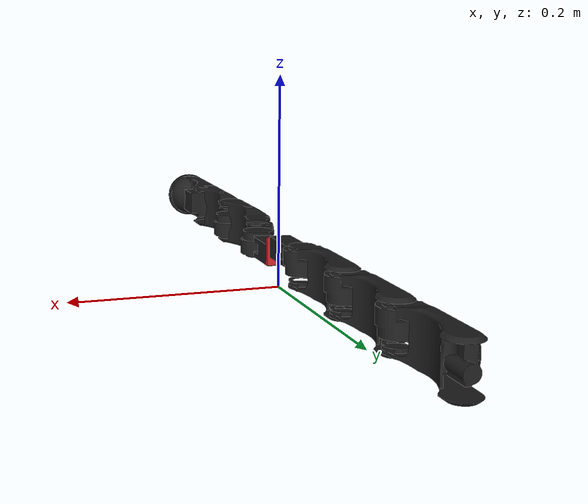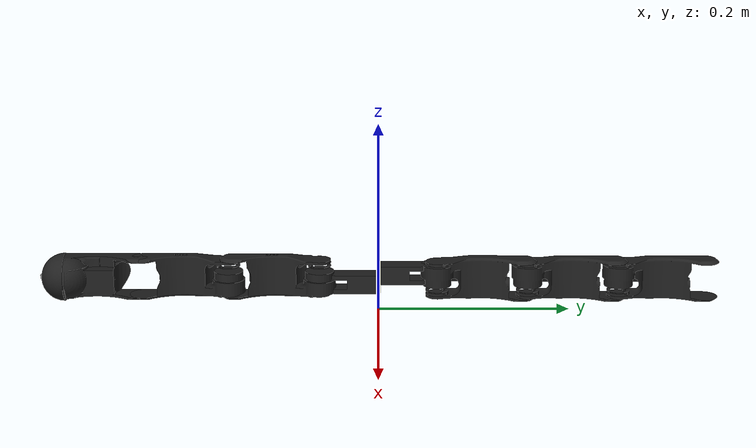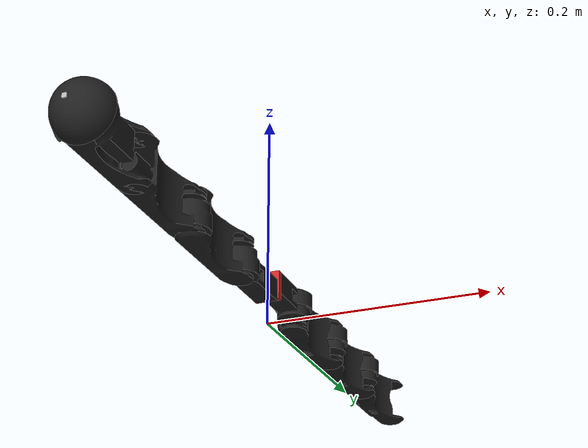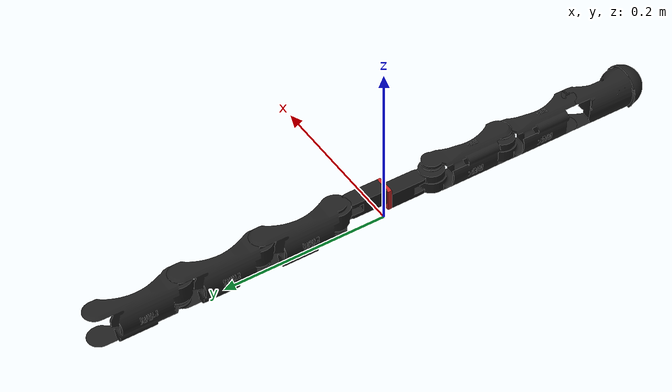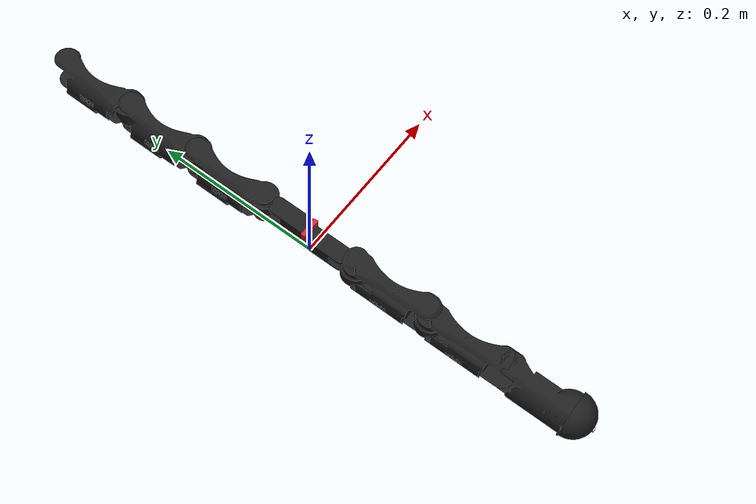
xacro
<?xml version="1.0" ?>

<robot name="mrm" xmlns:xacro="http://www.ros.org/wiki/xacro">  <!--the intepreter -->

	<!-- BGN - Include -->
	<xacro:include filename="$(find mrm_description)/urdf/links_joints.xacro" />
	<xacro:include filename="$(find mrm_description)/urdf/sensor_plugins_pirate.xacro" />
	<!-- END - Include -->

    <!-- World link -->
    <link name="world">
       <origin rpy="0 0 0" xyz="0 0 0" />
    </link>

	<!-- a prismatic joint where the base link can move long its z axis -->
    <m_joint name="prismatic" type="prismatic"
		axis_xyz="0 0 1"
		origin_rpy="1.57 0 0" origin_xyz="0 0 0.025"
		parent="world" child="base_link"
		limit_e="40" limit_l="-0.4" limit_u="0.4" limit_v="0.4"
		damping="0.2" friction="0.02"/>

	<m_link_box name="base_link"
				origin_rpy="0 0 0" origin_xyz="0 0.01 0" size="0.0235 0.0265 0.005"
				mass="0.15"
				ixx="0.01" ixy="0" ixz="0"
				iyy="0.01" iyz="0"
				izz="0.01"/>

	<gazebo reference="base_link">
 	   <material>Gazebo/Red</material>
 	   <self_collide>false</self_collide>
     </gazebo>

	<m_link_mesh name="link_01"
				origin_rpy="0 0 0" origin_xyz="0 0 0.0"
				mass="0.144"
				ixx="0.002" ixy="0" ixz="0"
				iyy="0.002" iyz="0"
				izz="0.001"
				meshfile="package://mrm_description/meshes/pirate_mesh/mid_part.stl"
				meshscale="0.001 0.001 0.001" />   <!-- the stl is created by mm -->

	<joint name="base_link__link_01" type="fixed">
        <parent link="base_link"/>
        <child link="link_01"/>
        <origin xyz="0 0.005 0.0025" rpy="0 0 0"/>
    </joint>

   <gazebo reference="link_01">
	   <kp>100000.0</kp>
 	  <kd>100.0</kd>
 	  <mu1>0.02</mu1>
 	  <mu2>0.02</mu2>
	   <material>Gazebo/Red</material>
	   <self_collide>false</self_collide>
    </gazebo>

	<m_joint name="joint_01" type="revolute"
		axis_xyz="0 1 0"
		origin_rpy="0 1.571 3.1416" origin_xyz="0 0.006 0.059"
		parent="link_01" child="link_02"
		limit_e="30" limit_l="-3" limit_u="3" limit_v="1"
		damping="0.05" friction="0.0"/>

	<m_link_mesh name="link_02"
				origin_rpy="0 0 0" origin_xyz="0 0 0"
				mass="0.144"
				ixx="0.002" ixy="0" ixz="0"
				iyy="0.002" iyz="0"
				izz="0.001"
				meshfile="package://mrm_description/meshes/pirate_mesh/bendModule.STL"
				meshscale="0.001 0.001 0.001" />   <!-- the stl is created by mm -->

	<gazebo reference="link_02">
		<kp>100000.0</kp>
  	  <kd>100.0</kd>
	 <mu1>0.02</mu1>
	 <mu2>0.02</mu2>
 	   <material>Gazebo/Red</material>
	   <self_collide>false</self_collide>
    </gazebo>

	<m_joint name="joint_02" type="revolute"
		axis_xyz="0 1 0"
		origin_rpy="0 0 0" origin_xyz="-0.095 0 0"
		parent="link_02" child="link_03"
		limit_e="30" limit_l="-3" limit_u="3" limit_v="1"
		damping="0.05" friction="0.0"/>

	<m_link_mesh name="link_03"
				origin_rpy="0 0 0" origin_xyz="0 0 0.0"
				mass="0.144"
				ixx="0.002" ixy="0" ixz="0"
				iyy="0.002" iyz="0"
				izz="0.001"
				meshfile="package://mrm_description/meshes/pirate_mesh/bendModule.STL"
				meshscale="0.001 0.001 0.001" />   <!-- the stl is created by mm -->

	<gazebo reference="link_03">
		<kp>100000.0</kp>
  	  <kd>100.0</kd>
	 <mu1>0.02</mu1>
	 <mu2>0.02</mu2>
 	   <material>Gazebo/Red</material>
	   <self_collide>false</self_collide>
    </gazebo>

	<m_joint name="joint_03" type="revolute"
		axis_xyz="0 1 0"
		origin_rpy="3.1416 3.1416 0" origin_xyz="-0.095 0 0"
		parent="link_03" child="link_04"
		limit_e="30" limit_l="-3" limit_u="3" limit_v="1"
		damping="0.05" friction="0.0"/>

	<m_link_mesh name="link_04"
				origin_rpy="0 0 0" origin_xyz="0 0 0"
				mass="0.144"
				ixx="0.002" ixy="0" ixz="0"
				iyy="0.002" iyz="0"
				izz="0.001"
				meshfile="package://mrm_description/meshes/pirate_mesh/camModule.STL"
				meshscale="0.001 0.001 0.001" />   <!-- the stl is created by mm -->

	<gazebo reference="link_04">
		<kp>100000.0</kp>
  	  <kd>100.0</kd>
	 <mu1>0.02</mu1>
	 <mu2>0.02</mu2>
 	   <material>Gazebo/Red</material>
	   <self_collide>false</self_collide>
    </gazebo>

	<joint name="link_04__laser_scanner" type="fixed">
        <parent link="link_04"/>
        <child link="link_04_dome"/>
        <origin xyz="0 0 0" rpy="0 1.57 0"/>
    </joint>

	<m_link_mesh name="link_04_dome"
				origin_rpy="0 -1.57 0" origin_xyz="0 0 0"
				mass="0.1"
				ixx="0.001" ixy="0" ixz="0"
				iyy="0.001" iyz="0"
				izz="0.001"
				meshfile="package://mrm_description/meshes/pirate_mesh/cameraDome.STL"
				meshscale="0.001 0.001 0.001" />   <!-- the stl is created by mm -->

	<gazebo reference="link_04_dome">
		<kp>100000.0</kp>
  	  <kd>100.0</kd>
	 <mu1>0.02</mu1>
	 <mu2>0.02</mu2>
		<selfCollide>true</selfCollide>
 	   <material>Gazebo/Red</material>
    </gazebo>

	<joint name="link_04_doom__laser_link" type="fixed">
        <parent link="link_04_dome"/>
        <child link="laser_link"/>
        <origin xyz="0 0 0.1" rpy="0 -1.57 1.57"/>
    </joint>

	<m_link_box name="laser_link"
				origin_rpy="0 0 0" origin_xyz="0 0 0" size="0.004 0.004 0.004"
				mass="0.1"
				ixx="0.001" ixy="0" ixz="0"
				iyy="0.001" iyz="0"
				izz="0.001"/>

    <gazebo>
		<plugin name="gazebo_ros_control" filename="libgazebo_ros_control.so">
			<legacyModeNS>false</legacyModeNS>
		</plugin>
	</gazebo>

	<gazebo>
        <plugin name="joint_state_publisher" filename="libgazebo_ros_joint_state_publisher.so">
          <jointName>joint_01, joint_02, joint_03, prismatic, joint_01_2, joint_02_2, joint_03_2</jointName>
          <updateRate>100.0</updateRate>
          <alwaysOn>true</alwaysOn>
        </plugin>
    </gazebo>

<m_link_mesh name="link_01_2"
			origin_rpy="0 0 0" origin_xyz="0 0 0.0"
			mass="0.044"
			ixx="0.002" ixy="0" ixz="0"
			iyy="0.002" iyz="0"
			izz="0.001"
			meshfile="package://mrm_description/meshes/pirate_mesh/mid_part.stl"
			meshscale="0.001 0.001 0.001" />   <!-- the stl is created by mm -->

<joint name="base_link__link_01_2" type="fixed">
	<parent link="base_link"/>
	<child link="link_01_2"/>
	<origin xyz="0 0.015 -0.0025" rpy="3.1416 0 0"/>
</joint>

<gazebo reference="link_01_2">
   <kp>100000.0</kp>
  <kd>100.0</kd>
  <mu1>0.02</mu1>
  <mu2>0.02</mu2>
   <material>Gazebo/Red</material>
   <self_collide>false</self_collide>
</gazebo>

<m_joint name="joint_01_2" type="revolute"
	axis_xyz="0 1 0"
	origin_rpy="0 1.571 3.1416" origin_xyz="0 0.006 0.059"
	parent="link_01_2" child="link_02_2"
	limit_e="30" limit_l="-3" limit_u="3" limit_v="1"
	damping="0.05" friction="0.0"/>

<m_link_mesh name="link_02_2"
			origin_rpy="0 0 0" origin_xyz="0 0 0"
			mass="0.044"
			ixx="0.002" ixy="0" ixz="0"
			iyy="0.002" iyz="0"
			izz="0.001"
			meshfile="package://mrm_description/meshes/pirate_mesh/bendModule.STL"
			meshscale="0.001 0.001 0.001" />

<gazebo reference="link_02_2">
	<kp>100000.0</kp>
  <kd>100.0</kd>
 <mu1>0.02</mu1>
 <mu2>0.02</mu2>
   <material>Gazebo/Red</material>
   <self_collide>false</self_collide>
</gazebo>

<m_joint name="joint_02_2" type="revolute"
	axis_xyz="0 1 0"
	origin_rpy="0 0 0" origin_xyz="-0.095 0 0"
	parent="link_02_2" child="link_03_2"
	limit_e="30" limit_l="-3" limit_u="3" limit_v="1"
	damping="0.05" friction="0.0"/>

<m_link_mesh name="link_03_2"
			origin_rpy="0 0 0" origin_xyz="0 0 0.0"
			mass="0.044"
			ixx="0.002" ixy="0" ixz="0"
			iyy="0.002" iyz="0"
			izz="0.001"
			meshfile="package://mrm_description/meshes/pirate_mesh/bendModule.STL"
			meshscale="0.001 0.001 0.001" />

<gazebo reference="link_03_2">
	<kp>100000.0</kp>
  <kd>100.0</kd>
 <mu1>0.02</mu1>
 <mu2>0.02</mu2>
   <material>Gazebo/Red</material>
   <self_collide>false</self_collide>
</gazebo>

<m_joint name="joint_03_2" type="revolute"
	axis_xyz="0 1 0"
	origin_rpy="0 0 0" origin_xyz="-0.095 0 0"
	parent="link_03_2" child="link_04_2"
	limit_e="30" limit_l="-3" limit_u="3" limit_v="1"
	damping="0.05" friction="0.0"/>

<m_link_mesh name="link_04_2"
			origin_rpy="0 0 0" origin_xyz="0 0 0"
			mass="0.044"
			ixx="0.002" ixy="0" ixz="0"
			iyy="0.002" iyz="0"
			izz="0.001"
			meshfile="package://mrm_description/meshes/pirate_mesh/bendModule.STL"
			meshscale="0.001 0.001 0.001" />

<gazebo reference="link_04_2">
  <kp>100000.0</kp>
  <kd>100.0</kd>
  <mu1>0.02</mu1>
  <mu2>0.02</mu2>
   <material>Gazebo/Red</material>
   <self_collide>false</self_collide>
</gazebo>

</robot>

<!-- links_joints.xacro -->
<robot xmlns:xacro="http://www.ros.org/wiki/xacro">

	<xacro:macro name="m_joint" params="name type axis_xyz origin_rpy origin_xyz parent child limit_e limit_l limit_u limit_v damping friction" >
		<joint name="${name}" type="${type}">
			<axis xyz="${axis_xyz}" />
			<limit effort="${limit_e}" lower="${limit_l}" upper="${limit_u}" velocity="${limit_v}" />
			<origin rpy="${origin_rpy}" xyz="${origin_xyz}" />
			<parent link="${parent}"/>
			<child link="${child}"/>
			<dynamics damping="${damping}" friction="${friction}"/>
		</joint>
		<transmission name="trans_${name}">
		  	<type>transmission_interface/SimpleTransmission</type>
		  	<joint name="${name}">
			  	<hardwareInterface>hardware_interface/EffortJointInterface</hardwareInterface>
		  	</joint>
		  	<actuator name="motor_${name}">
			  	<hardwareInterface>hardware_interface/EffortJointInterface</hardwareInterface>
			  	<mechanicalReduction>1</mechanicalReduction>
		  	</actuator>
	  	</transmission>
	</xacro:macro>

	<xacro:macro name="m_link_cylinder" params="name origin_xyz origin_rpy radius length mass ixx ixy ixz iyy iyz izz" >
		<link name="${name}">
			<inertial>
				<mass value="${mass}" />
				<origin rpy="${origin_rpy}" xyz="${origin_xyz}" />
				<inertia ixx="${ixx}" ixy="${ixy}" ixz="${ixz}" iyy="${iyy}" iyz="${iyz}" izz="${izz}" />
			</inertial>
		  <collision>
				<origin rpy="${origin_rpy}" xyz="${origin_xyz}" />
				<geometry>
				  <cylinder radius="${radius}" length="${length}" />
				</geometry>
			</collision>
			<visual>
				<origin rpy="${origin_rpy}" xyz="${origin_xyz}" />
				<geometry>
				  <cylinder radius="${radius}" length="${length}" />
				</geometry>
			</visual>
		</link>
	</xacro:macro>

	<xacro:macro name="m_link_box" params="name origin_xyz origin_rpy size mass ixx ixy ixz iyy iyz izz" >
		<link name="${name}">
			<inertial>
				<mass value="${mass}" />
				<origin rpy="${origin_rpy}" xyz="${origin_xyz}" />
				<inertia ixx="${ixx}" ixy="${ixy}" ixz="${ixz}" iyy="${iyy}" iyz="${iyz}" izz="${izz}" />
			</inertial>
		    <collision>
				<origin rpy="${origin_rpy}" xyz="${origin_xyz}" />
				<geometry>
				  <box size="${size}" />
				</geometry>
			</collision>
			<visual>
				<origin rpy="${origin_rpy}" xyz="${origin_xyz}" />
				<geometry>
				  <box size="${size}" />
				</geometry>
			</visual>
		</link>
	</xacro:macro>

	<xacro:macro name="m_link_sphere" params="name origin_xyz origin_rpy radius mass ixx ixy ixz iyy iyz izz" >
		<link name="${name}">
			<inertial>
				<mass value="${mass}" />
				<origin rpy="${origin_rpy}" xyz="${origin_xyz}" />
				<inertia ixx="${ixx}" ixy="${ixy}" ixz="${ixz}" iyy="${iyy}" iyz="${iyz}" izz="${izz}" />
			</inertial>
		    <collision>
				<origin rpy="${origin_rpy}" xyz="${origin_xyz}" />
				<geometry>
				  <sphere radius="${radius}" />
				</geometry>
			</collision>
			<visual>
				<origin rpy="${origin_rpy}" xyz="${origin_xyz}" />
				<geometry>
				  <sphere radius="${radius}" />
				</geometry>
			</visual>
		</link>
	</xacro:macro>

	<xacro:macro name="m_link_mesh" params="name origin_xyz origin_rpy meshfile meshscale mass ixx ixy ixz iyy iyz izz" >
		<link name="${name}">
			<inertial>
				<mass value="${mass}" />
				<origin rpy="${origin_rpy}" xyz="${origin_xyz}" />
				<inertia ixx="${ixx}" ixy="${ixy}" ixz="${ixz}" iyy="${iyy}" iyz="${iyz}" izz="${izz}" />
			</inertial>
		    <collision>
				<origin rpy="${origin_rpy}" xyz="${origin_xyz}" />
				<geometry>
				  <mesh filename="${meshfile}" scale="${meshscale}"/>
				</geometry>
			</collision>
			<visual>
				<origin rpy="${origin_rpy}" xyz="${origin_xyz}" />
				<geometry>
				  <mesh filename="${meshfile}" scale="${meshscale}"/>
				</geometry>
				<material name="light_black" />
			</visual>
		</link>
	</xacro:macro>

</robot>
